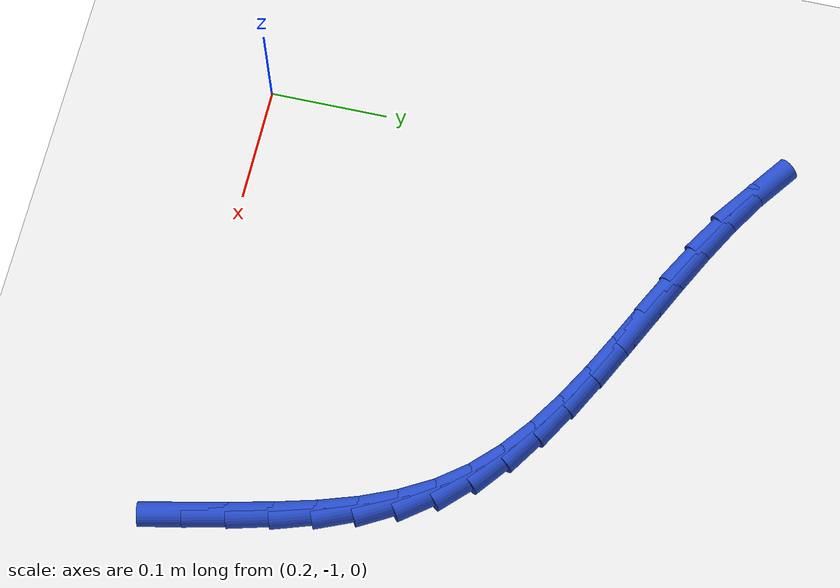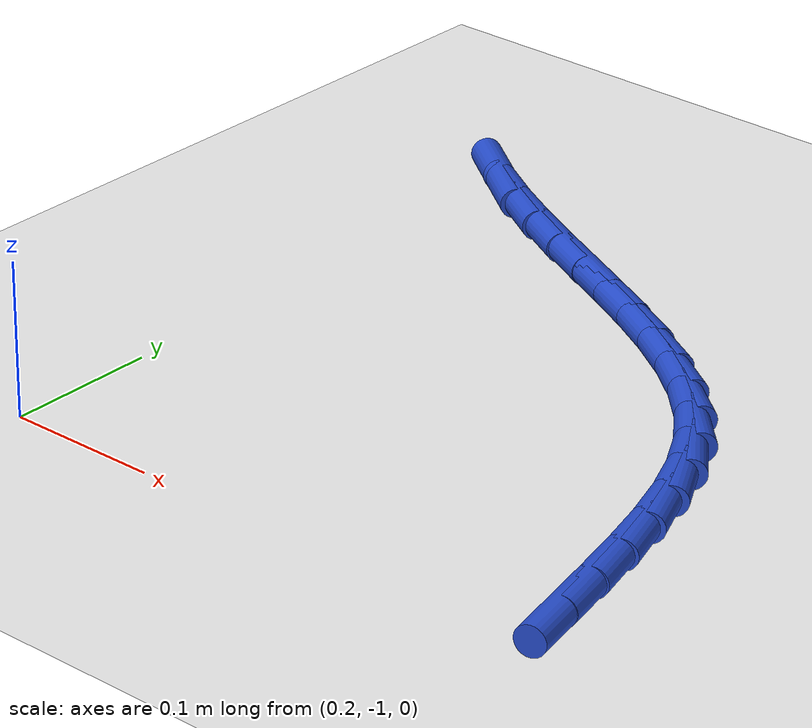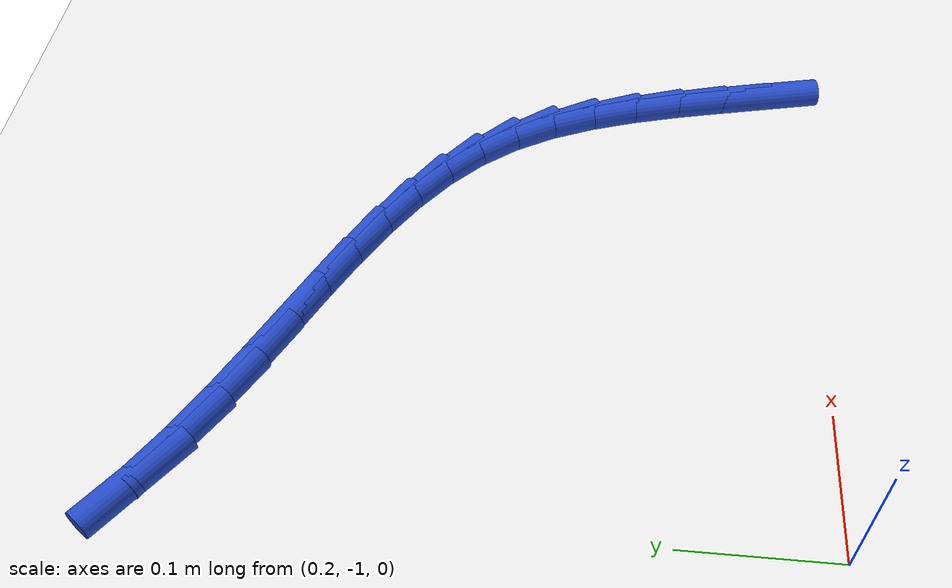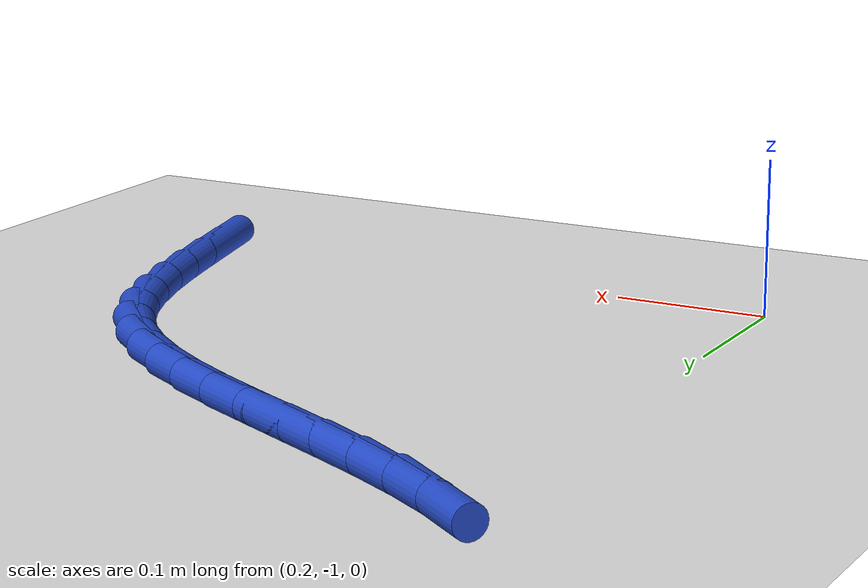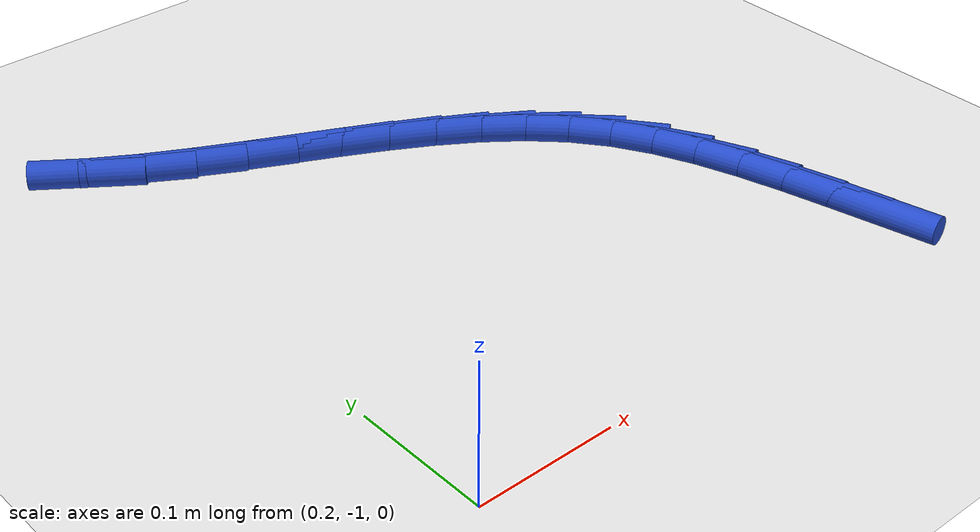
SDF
<sdf version="1.6">
 <world name="default">
  <model name="ground_plane">
   <static>1</static>
   <link name="link">
    <collision name="collision">
     <geometry><plane><normal>0 0 1</normal><size>100 100</size></plane></geometry>
     <surface><friction><ode><mu>100</mu><mu2>50</mu2></ode></friction></surface>
    </collision>
    <visual name="visual">
     <cast_shadows>0</cast_shadows>
     <geometry><plane><normal>0 0 1</normal><size>100 100</size></plane></geometry>
     <material>
      <script><uri>file://media/materials/scripts/gazebo.material</uri><name>Gazebo/WhiteGlow</name></script>
     </material>
    </visual>
   </link>
  </model>
  <model name="line">
   <link name="link_184">
    <pose>0.5825956623435385 -0.9700752102386742 0.01 0 1.57 -1.3511320766216257</pose>
    <collision name="collision">
     <geometry><cylinder><radius>0.01</radius><length>0.08</length></cylinder></geometry>
    </collision>
    <visual name="visual">
     <material>
      <script><name>Gazebo/Blue</name><uri>file://media/materials/scripts/gazebo.material</uri></script>
     </material>
     <geometry><cylinder><radius>0.01</radius><length>0.08</length></cylinder></geometry>
    </visual>
   </link>
   <link name="link_185">
    <pose>0.5749470323532422 -0.9358174241976285 0.01 0 1.57 -1.3395375366900937</pose>
    <collision name="collision">
     <geometry><cylinder><radius>0.01</radius><length>0.08</length></cylinder></geometry>
    </collision>
    <visual name="visual">
     <material>
      <script><name>Gazebo/Blue</name><uri>file://media/materials/scripts/gazebo.material</uri></script>
     </material>
     <geometry><cylinder><radius>0.01</radius><length>0.08</length></cylinder></geometry>
    </visual>
   </link>
   <link name="link_186">
    <pose>0.5669883603851145 -0.9020185564152776 0.01 0 1.57 -1.3062861019139613</pose>
    <collision name="collision">
     <geometry><cylinder><radius>0.01</radius><length>0.08</length></cylinder></geometry>
    </collision>
    <visual name="visual">
     <material>
      <script><name>Gazebo/Blue</name><uri>file://media/materials/scripts/gazebo.material</uri></script>
     </material>
     <geometry><cylinder><radius>0.01</radius><length>0.08</length></cylinder></geometry>
    </visual>
   </link>
   <link name="link_187">
    <pose>0.5580816256919012 -0.8691349979512977 0.01 0 1.57 -1.2493638158089841</pose>
    <collision name="collision">
     <geometry><cylinder><radius>0.01</radius><length>0.08</length></cylinder></geometry>
    </collision>
    <visual name="visual">
     <material>
      <script><name>Gazebo/Blue</name><uri>file://media/materials/scripts/gazebo.material</uri></script>
     </material>
     <geometry><cylinder><radius>0.01</radius><length>0.08</length></cylinder></geometry>
    </visual>
   </link>
   <link name="link_188">
    <pose>0.5475888075263481 -0.8376231398653622 0.01 0 1.57 -1.1660380837772677</pose>
    <collision name="collision">
     <geometry><cylinder><radius>0.01</radius><length>0.08</length></cylinder></geometry>
    </collision>
    <visual name="visual">
     <material>
      <script><name>Gazebo/Blue</name><uri>file://media/materials/scripts/gazebo.material</uri></script>
     </material>
     <geometry><cylinder><radius>0.01</radius><length>0.08</length></cylinder></geometry>
    </visual>
   </link>
   <link name="link_189">
    <pose>0.5348718851412005 -0.8079393732171456 0.01 0 1.57 -1.0537902376840238</pose>
    <collision name="collision">
     <geometry><cylinder><radius>0.01</radius><length>0.08</length></cylinder></geometry>
    </collision>
    <visual name="visual">
     <material>
      <script><name>Gazebo/Blue</name><uri>file://media/materials/scripts/gazebo.material</uri></script>
     </material>
     <geometry><cylinder><radius>0.01</radius><length>0.08</length></cylinder></geometry>
    </visual>
   </link>
   <link name="link_190">
    <pose>0.519292837789204 -0.780540089066322 0.01 0 1.57 -0.9139707960737307</pose>
    <collision name="collision">
     <geometry><cylinder><radius>0.01</radius><length>0.08</length></cylinder></geometry>
    </collision>
    <visual name="visual">
     <material>
      <script><name>Gazebo/Blue</name><uri>file://media/materials/scripts/gazebo.material</uri></script>
     </material>
     <geometry><cylinder><radius>0.01</radius><length>0.08</length></cylinder></geometry>
    </visual>
   </link>
   <link name="link_191">
    <pose>0.500255705519958 -0.7558495945523827 0.01 0 1.57 -0.7760229641621338</pose>
    <collision name="collision">
     <geometry><cylinder><radius>0.01</radius><length>0.08</length></cylinder></geometry>
    </collision>
    <visual name="visual">
     <material>
      <script><name>Gazebo/Blue</name><uri>file://media/materials/scripts/gazebo.material</uri></script>
     </material>
     <geometry><cylinder><radius>0.01</radius><length>0.08</length></cylinder></geometry>
    </visual>
   </link>
   <link name="link_192">
    <pose>0.4777979452925649 -0.7338090272344053 0.01 0 1.57 -0.6636286534860562</pose>
    <collision name="collision">
     <geometry><cylinder><radius>0.01</radius><length>0.08</length></cylinder></geometry>
    </collision>
    <visual name="visual">
     <material>
      <script><name>Gazebo/Blue</name><uri>file://media/materials/scripts/gazebo.material</uri></script>
     </material>
     <geometry><cylinder><radius>0.01</radius><length>0.08</length></cylinder></geometry>
    </visual>
   </link>
   <link name="link_193">
    <pose>0.4524467059392967 -0.7139859883585883 0.01 0 1.57 -0.5773757434125156</pose>
    <collision name="collision">
     <geometry><cylinder><radius>0.01</radius><length>0.08</length></cylinder></geometry>
    </collision>
    <visual name="visual">
     <material>
      <script><name>Gazebo/Blue</name><uri>file://media/materials/scripts/gazebo.material</uri></script>
     </material>
     <geometry><cylinder><radius>0.01</radius><length>0.08</length></cylinder></geometry>
    </visual>
   </link>
   <link name="link_194">
    <pose>0.4247418539661871 -0.6959383781464134 0.01 0 1.57 -0.5152175315151599</pose>
    <collision name="collision">
     <geometry><cylinder><radius>0.01</radius><length>0.08</length></cylinder></geometry>
    </collision>
    <visual name="visual">
     <material>
      <script><name>Gazebo/Blue</name><uri>file://media/materials/scripts/gazebo.material</uri></script>
     </material>
     <geometry><cylinder><radius>0.01</radius><length>0.08</length></cylinder></geometry>
    </visual>
   </link>
   <link name="link_195">
    <pose>0.39522325587926915 -0.6792240968193619 0.01 0 1.57 -0.4746747904552826</pose>
    <collision name="collision">
     <geometry><cylinder><radius>0.01</radius><length>0.08</length></cylinder></geometry>
    </collision>
    <visual name="visual">
     <material>
      <script><name>Gazebo/Blue</name><uri>file://media/materials/scripts/gazebo.material</uri></script>
     </material>
     <geometry><cylinder><radius>0.01</radius><length>0.08</length></cylinder></geometry>
    </visual>
   </link>
   <link name="link_196">
    <pose>0.3644307781845779 -0.6634010445989164 0.01 0 1.57 -0.45371964570279055</pose>
    <collision name="collision">
     <geometry><cylinder><radius>0.01</radius><length>0.08</length></cylinder></geometry>
    </collision>
    <visual name="visual">
     <material>
      <script><name>Gazebo/Blue</name><uri>file://media/materials/scripts/gazebo.material</uri></script>
     </material>
     <geometry><cylinder><radius>0.01</radius><length>0.08</length></cylinder></geometry>
    </visual>
   </link>
   <link name="link_197">
    <pose>0.33290428738814654 -0.6480271217065581 0.01 0 1.57 -0.45112607533547827</pose>
    <collision name="collision">
     <geometry><cylinder><radius>0.01</radius><length>0.08</length></cylinder></geometry>
    </collision>
    <visual name="visual">
     <material>
      <script><name>Gazebo/Blue</name><uri>file://media/materials/scripts/gazebo.material</uri></script>
     </material>
     <geometry><cylinder><radius>0.01</radius><length>0.08</length></cylinder></geometry>
    </visual>
   </link>
   <link name="link_198">
    <pose>0.3011836499960088 -0.6326602283637689 0.01 0 1.57 -0.46656299753569425</pose>
    <collision name="collision">
     <geometry><cylinder><radius>0.01</radius><length>0.08</length></cylinder></geometry>
    </collision>
    <visual name="visual">
     <material>
      <script><name>Gazebo/Blue</name><uri>file://media/materials/scripts/gazebo.material</uri></script>
     </material>
     <geometry><cylinder><radius>0.01</radius><length>0.08</length></cylinder></geometry>
    </visual>
   </link>
   <link name="link_199">
    <pose>0.2698087325141975 -0.6168582647920298 0.01 0 1.57 -0.5005741268342285</pose>
    <collision name="collision">
     <geometry><cylinder><radius>0.01</radius><length>0.08</length></cylinder></geometry>
    </collision>
    <visual name="visual">
     <material>
      <script><name>Gazebo/Blue</name><uri>file://media/materials/scripts/gazebo.material</uri></script>
     </material>
     <geometry><cylinder><radius>0.01</radius><length>0.08</length></cylinder></geometry>
    </visual>
   </link>
   <link name="link_200">
    <pose>0.23931940144874805 -0.6001791312128235 0.01 0 1.57 -0.5544686373539616</pose>
    <collision name="collision">
     <geometry><cylinder><radius>0.01</radius><length>0.08</length></cylinder></geometry>
    </collision>
    <visual name="visual">
     <material>
      <script><name>Gazebo/Blue</name><uri>file://media/materials/scripts/gazebo.material</uri></script>
     </material>
     <geometry><cylinder><radius>0.01</radius><length>0.08</length></cylinder></geometry>
    </visual>
   </link>
   <link name="link_201">
    <pose>0.2102555233056935 -0.5821807278476315 0.01 0 1.57 -0.6300437200107732</pose>
    <collision name="collision">
     <geometry><cylinder><radius>0.01</radius><length>0.08</length></cylinder></geometry>
    </collision>
    <visual name="visual">
     <material>
      <script><name>Gazebo/Blue</name><uri>file://media/materials/scripts/gazebo.material</uri></script>
     </material>
     <geometry><cylinder><radius>0.01</radius><length>0.08</length></cylinder></geometry>
    </visual>
   </link>
  </model>
 </world>
</sdf>
